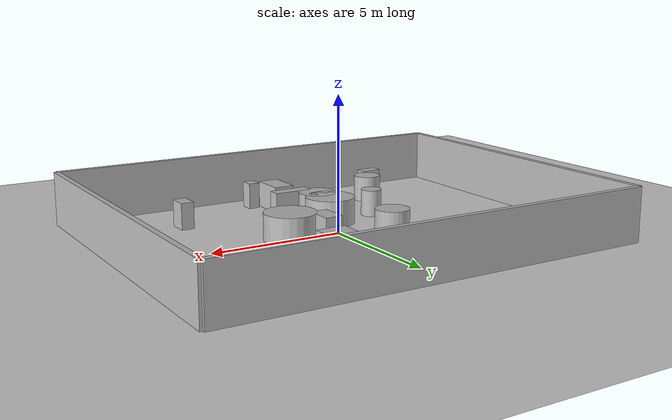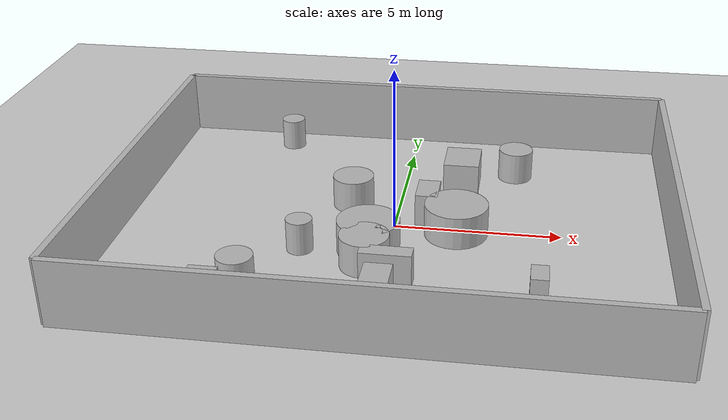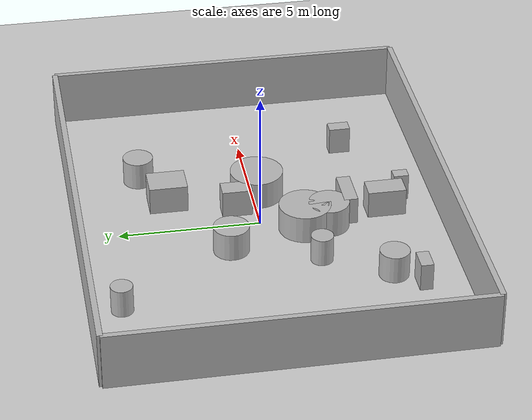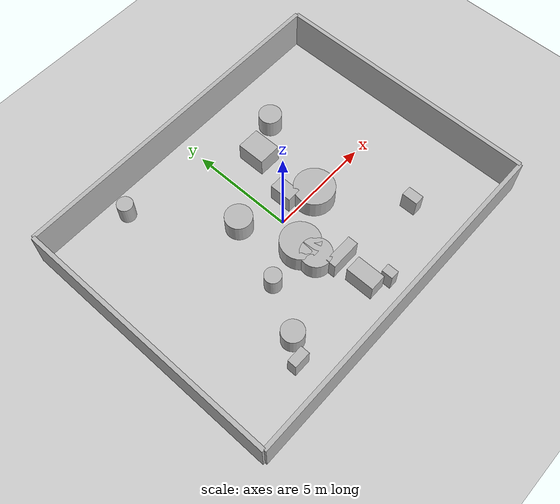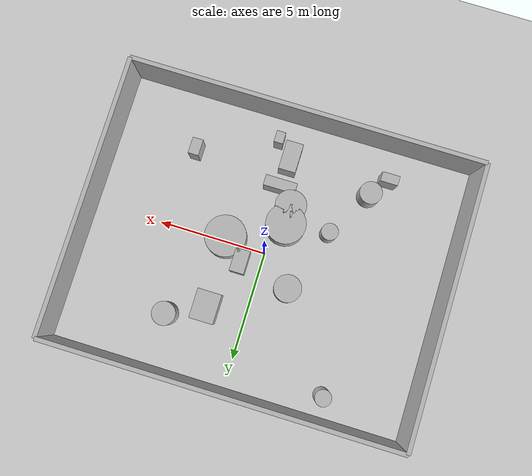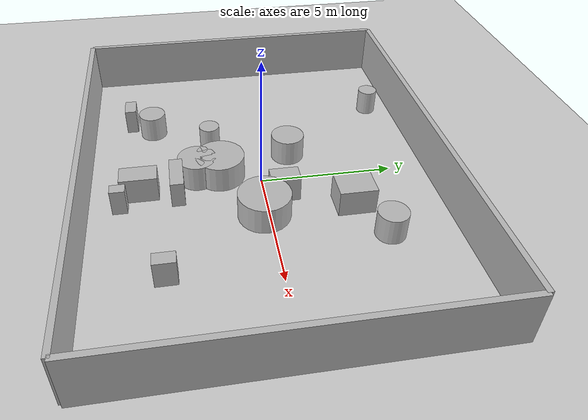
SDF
<?xml version="1.0"?>
<sdf version="1.6">
  <world name="env_1">

    <include><uri>model://ground_plane</uri></include>
    <include><uri>model://sun</uri></include>

    <!-- WALLS -->
    <model name="wall_north"><static>true</static><pose>0 6.434565835356877 1 0 0 0</pose>
      <link name="link"><collision name="collision">
        <geometry><box><size>16.349218833399185 0.2 2</size></box></geometry>
      </collision><visual name="visual">
        <geometry><box><size>16.349218833399185 0.2 2</size></box></geometry>
      </visual></link>
    </model>

    <model name="wall_south"><static>true</static><pose>0 -6.434565835356877 1 0 0 0</pose>
      <link name="link"><collision name="collision">
        <geometry><box><size>16.349218833399185 0.2 2</size></box></geometry>
      </collision><visual name="visual">
        <geometry><box><size>16.349218833399185 0.2 2</size></box></geometry>
      </visual></link>
    </model>

    <model name="wall_east"><static>true</static><pose>8.174609416699592 0 1 0 0 1.57</pose>
      <link name="link"><collision name="collision">
        <geometry><box><size>12.869131670713754 0.2 2</size></box></geometry>
      </collision><visual name="visual">
        <geometry><box><size>12.869131670713754 0.2 2</size></box></geometry>
      </visual></link>
    </model>

    <model name="wall_west"><static>true</static><pose>-8.174609416699592 0 1 0 0 1.57</pose>
      <link name="link"><collision name="collision">
        <geometry><box><size>12.869131670713754 0.2 2</size></box></geometry>
      </collision><visual name="visual">
        <geometry><box><size>12.869131670713754 0.2 2</size></box></geometry>
      </visual></link>
    </model>

    <!-- SENSOR -->

    <model name="lidar_sensor">
      <static>true</static>
      <pose>6.32223227254971 5.3097153413615095 0.4 0 0 0</pose>
      <link name="link">
        <sensor name="lidar" type="ray">
          <pose>0 0 0 0 0 0</pose>
          <visualize>true</visualize>
          <always_on>true</always_on>
          <update_rate>10</update_rate>
          <ray>
            <scan><horizontal>
              <samples>180</samples>
              <resolution>1</resolution>
              <min_angle>-3.14159</min_angle>
              <max_angle>3.14159</max_angle>
            </horizontal></scan>
            <range><min>0.15</min><max>20.0</max><resolution>0.01</resolution></range>
          </ray>
          <plugin name="lidar_plugin" filename="liblidar_plugin.so"/>
        </sensor>
      </link>
    </model>

    <!-- OBSTACLES -->

    <model name="obstacle_0">
      <static>true</static>
      <pose>0.21422298280304108 -3.131258012953092 0.5 0 0 0</pose>
      <link name="link">
        <collision name="collision">
          <geometry><box><size>1.48 0.49 1.0</size></box></geometry>
        </collision>
        <visual name="visual">
          <geometry><box><size>1.48 0.49 1.0</size></box></geometry>
        </visual>
      </link>
    </model>

    <model name="obstacle_1">
      <static>true</static>
      <pose>1.7935359840539107 3.0691859911618353 0.5 0 0 0</pose>
      <link name="link">
        <collision name="collision">
          <geometry><box><size>1.11 1.36 1.0</size></box></geometry>
        </collision>
        <visual name="visual">
          <geometry><box><size>1.11 1.36 1.0</size></box></geometry>
        </visual>
      </link>
    </model>

    <model name="obstacle_2">
      <static>true</static>
      <pose>0.8596243756605482 -5.200047046872044 0.5 0 0 0</pose>
      <link name="link">
        <collision name="collision">
          <geometry><box><size>0.42 0.54 1.0</size></box></geometry>
        </collision>
        <visual name="visual">
          <geometry><box><size>0.42 0.54 1.0</size></box></geometry>
        </visual>
      </link>
    </model>

    <model name="obstacle_3">
      <static>true</static>
      <pose>-3.797034017090561 -3.9446309764646452 0.5 0 0 0</pose>
      <link name="link">
        <collision name="collision">
          <geometry><cylinder><radius>0.52</radius><length>1.0</length></cylinder></geometry>
        </collision>
        <visual name="visual">
          <geometry><cylinder><radius>0.52</radius><length>1.0</length></cylinder></geometry>
        </visual>
      </link>
    </model>

    <model name="obstacle_4">
      <static>true</static>
      <pose>3.457944205424143 3.9014488695403626 0.5 0 0 0</pose>
      <link name="link">
        <collision name="collision">
          <geometry><cylinder><radius>0.54</radius><length>1.0</length></cylinder></geometry>
        </collision>
        <visual name="visual">
          <geometry><cylinder><radius>0.54</radius><length>1.0</length></cylinder></geometry>
        </visual>
      </link>
    </model>

    <model name="obstacle_5">
      <static>true</static>
      <pose>-4.451900626057183 -4.819997609898131 0.5 0 0 0</pose>
      <link name="link">
        <collision name="collision">
          <geometry><box><size>0.81 0.44 1.0</size></box></geometry>
        </collision>
        <visual name="visual">
          <geometry><box><size>0.81 0.44 1.0</size></box></geometry>
        </visual>
      </link>
    </model>

    <model name="obstacle_6">
      <static>true</static>
      <pose>1.8779347182499908 -0.1759381851637274 0.5 0 0 0</pose>
      <link name="link">
        <collision name="collision">
          <geometry><cylinder><radius>0.95</radius><length>1.0</length></cylinder></geometry>
        </collision>
        <visual name="visual">
          <geometry><cylinder><radius>0.95</radius><length>1.0</length></cylinder></geometry>
        </visual>
      </link>
    </model>

    <model name="obstacle_7">
      <static>true</static>
      <pose>0.1198250059621131 -4.4917595582505365 0.5 0 0 0</pose>
      <link name="link">
        <collision name="collision">
          <geometry><box><size>0.79 1.36 1.0</size></box></geometry>
        </collision>
        <visual name="visual">
          <geometry><box><size>0.79 1.36 1.0</size></box></geometry>
        </visual>
      </link>
    </model>

    <model name="obstacle_8">
      <static>true</static>
      <pose>-2.5245298555096767 -1.707943118067342 0.5 0 0 0</pose>
      <link name="link">
        <collision name="collision">
          <geometry><cylinder><radius>0.39</radius><length>1.0</length></cylinder></geometry>
        </collision>
        <visual name="visual">
          <geometry><cylinder><radius>0.39</radius><length>1.0</length></cylinder></geometry>
        </visual>
      </link>
    </model>

    <model name="obstacle_9">
      <static>true</static>
      <pose>-1.4531142524097964 1.2628957683011288 0.5 0 0 0</pose>
      <link name="link">
        <collision name="collision">
          <geometry><cylinder><radius>0.63</radius><length>1.0</length></cylinder></geometry>
        </collision>
        <visual name="visual">
          <geometry><cylinder><radius>0.63</radius><length>1.0</length></cylinder></geometry>
        </visual>
      </link>
    </model>

    <model name="obstacle_10">
      <static>true</static>
      <pose>-0.52035537437561 -2.341379165533886 0.5 0 0 0</pose>
      <link name="link">
        <collision name="collision">
          <geometry><cylinder><radius>0.72</radius><length>1.0</length></cylinder></geometry>
        </collision>
        <visual name="visual">
          <geometry><cylinder><radius>0.72</radius><length>1.0</length></cylinder></geometry>
        </visual>
      </link>
    </model>

    <model name="obstacle_11">
      <static>true</static>
      <pose>-0.5422490361377594 -1.482707122183271 0.5 0 0 0</pose>
      <link name="link">
        <collision name="collision">
          <geometry><cylinder><radius>0.92</radius><length>1.0</length></cylinder></geometry>
        </collision>
        <visual name="visual">
          <geometry><cylinder><radius>0.92</radius><length>1.0</length></cylinder></geometry>
        </visual>
      </link>
    </model>

    <model name="obstacle_12">
      <static>true</static>
      <pose>-4.297035694156567 5.360300798177277 0.5 0 0 0</pose>
      <link name="link">
        <collision name="collision">
          <geometry><cylinder><radius>0.38</radius><length>1.0</length></cylinder></geometry>
        </collision>
        <visual name="visual">
          <geometry><cylinder><radius>0.38</radius><length>1.0</length></cylinder></geometry>
        </visual>
      </link>
    </model>

    <model name="obstacle_13">
      <static>true</static>
      <pose>0.9363914824174344 0.7092844663809359 0.5 0 0 0</pose>
      <link name="link">
        <collision name="collision">
          <geometry><box><size>0.67 1.07 1.0</size></box></geometry>
        </collision>
        <visual name="visual">
          <geometry><box><size>0.67 1.07 1.0</size></box></geometry>
        </visual>
      </link>
    </model>

    <model name="obstacle_14">
      <static>true</static>
      <pose>4.387063728543312 -3.6772650350558416 0.5 0 0 0</pose>
      <link name="link">
        <collision name="collision">
          <geometry><box><size>0.49 0.76 1.0</size></box></geometry>
        </collision>
        <visual name="visual">
          <geometry><box><size>0.49 0.76 1.0</size></box></geometry>
        </visual>
      </link>
    </model>

  </world>
</sdf>
